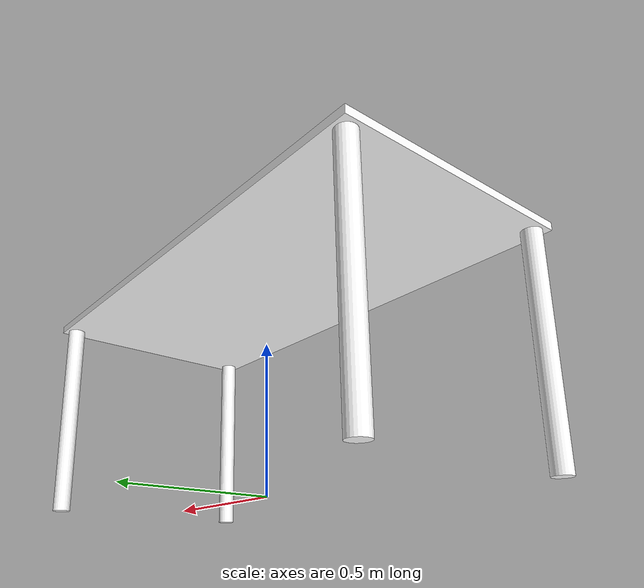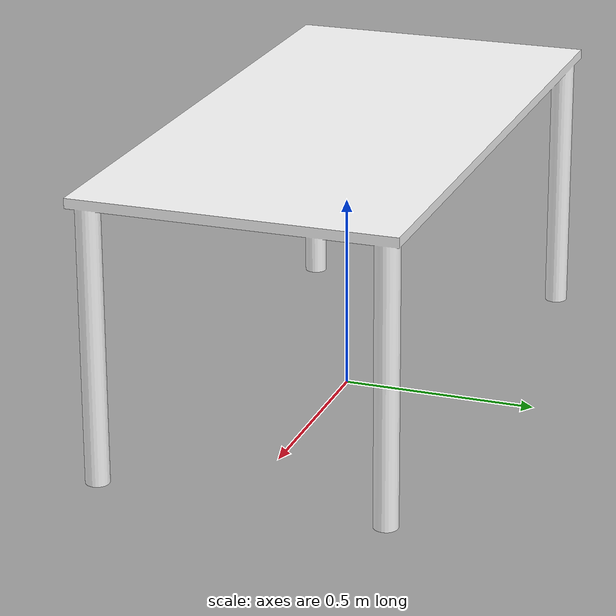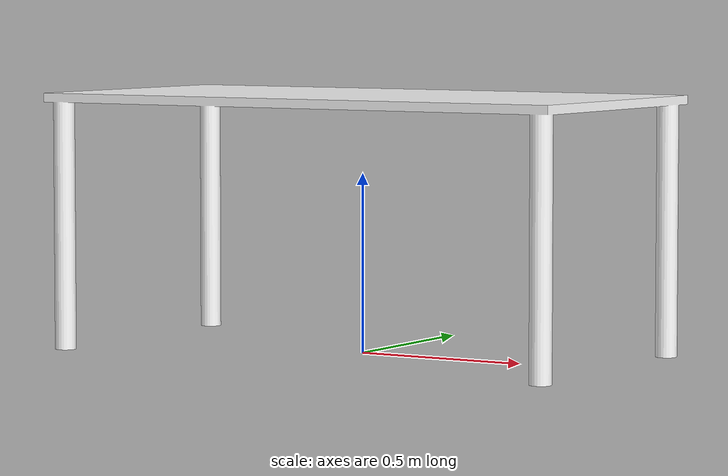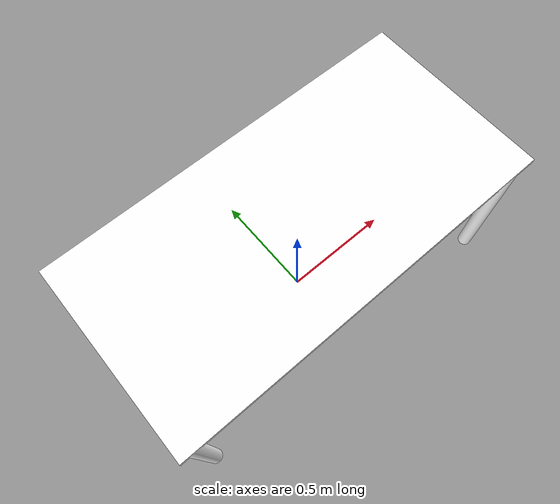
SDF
<?xml version="1.0" ?>
<sdf version="1.5">
  <model name="desk">
    <static>true</static>
    <link name="body">
      <visual name="visual">
        <geometry>
          <mesh><uri>model://desk/model.dae</uri></mesh>
        </geometry>
      </visual>
      <collision name="collision">
        <geometry>
          <mesh><uri>model://desk/model.dae</uri></mesh>
        </geometry>
      </collision>
    </link>
  </model>
</sdf>
